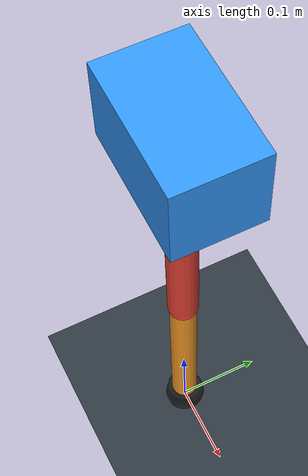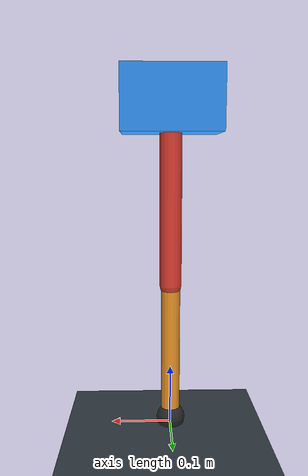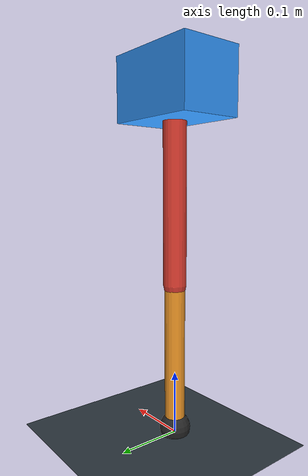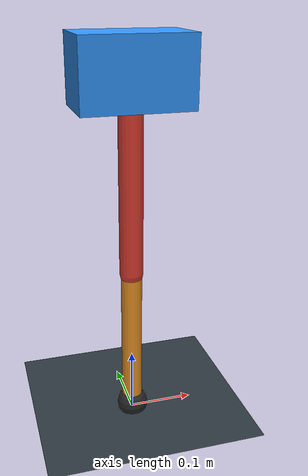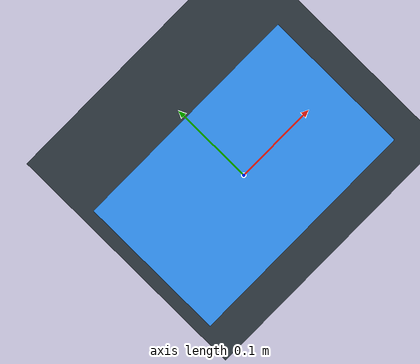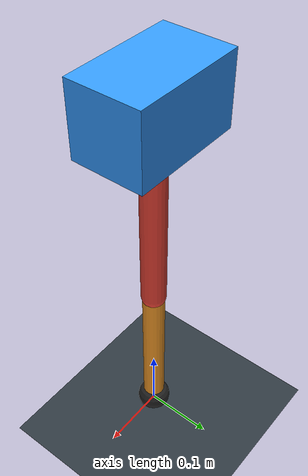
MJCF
<mujoco model="single_axis_two_bar">
  <compiler angle="radian" inertiafromgeom="true"/>
  <option timestep="0.001" integrator="implicitfast" gravity="0 0 -9.81"/>
  <default>
    <joint damping="0.08"/>
    <geom friction="1.2 0.01 0.0001" condim="3"/>
  </default>
  <worldbody>
    <geom name="floor" type="plane" size="5 5 0.1" rgba="0.18 0.22 0.25 1"/>
    <body name="carriage" pos="0 0 0.5434962787400766">
      <joint name="pole_slide" type="slide" axis="0 0 1"/>
      <geom name="payload" type="box" size="0.08 0.05 0.05" mass="3.443540835222903" rgba="0.2 0.6 1 1"/>
      <body name="thigh" pos="0 0 0">
        <joint name="hip" type="hinge" axis="0 1 0"/>
        <geom name="thigh_link" type="capsule" fromto="0 0 0 0 0 -0.3001978712758878" size="0.018" mass="0.2138949500489578" rgba="0.9 0.25 0.2 1"/>
        <body name="shank" pos="0 0 -0.3001978712758878">
          <joint name="knee" type="hinge" axis="0 1 0"/>
          <geom name="shank_link" type="capsule" fromto="0 0 0 0 0 -0.23433437484790237" size="0.016" mass="0.16696633853469883" rgba="0.95 0.6 0.15 1"/>
          <geom name="foot" type="sphere" pos="0 0 -0.23433437484790237" size="0.025" mass="0.03" rgba="0.15 0.15 0.15 1"/>
          <site name="toe" pos="0 0 -0.23433437484790237" size="0.008"/>
        </body>
      </body>
    </body>
  </worldbody>
  <actuator>
    <motor name="hip_motor" joint="hip" ctrlrange="-24.657800272835914 24.657800272835914"/>
    <motor name="knee_motor" joint="knee" ctrlrange="-141.82706545310793 141.82706545310793"/>
  </actuator>
</mujoco>
